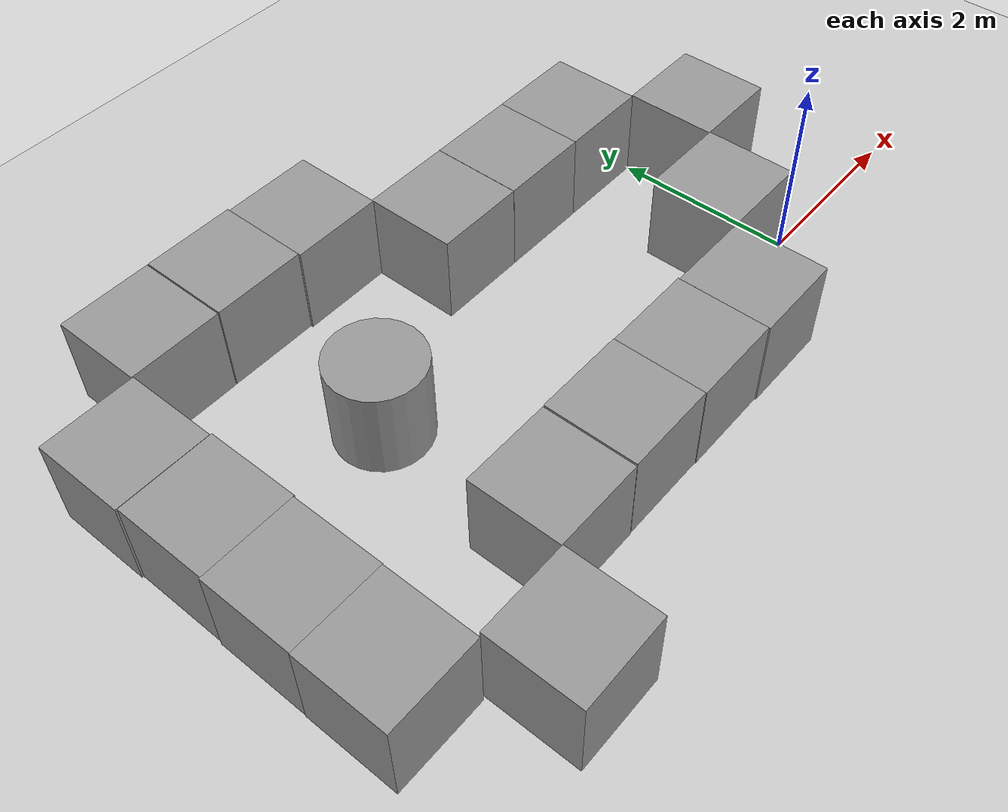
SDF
<sdf version="1.5">
 <world name="default">
  <light name="sun" type="directional">
   <pose>0 0 10 0 -0 0</pose>
   <diffuse>0.8 0.8 0.8 1</diffuse>
   <specular>0.2 0.2 0.2 1</specular>
   <attenuation>
    <range>1000</range>
    <constant>0.9</constant>
    <linear>0.01</linear>
    <quadratic>0.001</quadratic>
   </attenuation>
   <direction>-0.5 0.1 -0.9</direction>
  </light>
  <model name="ground_plane">
   <static>1</static>
   <link name="link">
    <collision name="collision">
     <geometry><plane><normal>0 0 1</normal><size>100 100</size></plane></geometry>
     <surface><friction><ode><mu>100</mu><mu2>50</mu2></ode></friction></surface>
    </collision>
    <visual name="visual">
     <cast_shadows>0</cast_shadows>
     <geometry><plane><normal>0 0 1</normal><size>100 100</size></plane></geometry>
     <material>
      <script><uri>file://media/materials/scripts/gazebo.material</uri><name>Gazebo/Grey</name></script>
     </material>
    </visual>
   </link>
  </model>
  <physics name="default_physics" default="0" type="ode">
   <max_step_size>0.001</max_step_size>
   <real_time_factor>1</real_time_factor>
   <real_time_update_rate>1000</real_time_update_rate>
   <gravity>0 0 -9.8</gravity>
   <magnetic_field>5.5645e-06 2.28758e-05 -4.23884e-05</magnetic_field>
  </physics>
  <scene><ambient>0.4 0.4 0.4 1</ambient><background>0.7 0.7 0.7 1</background><shadows>1</shadows></scene>
  <spherical_coordinates>
   <surface_model>EARTH_WGS84</surface_model>
   <latitude_deg>0</latitude_deg>
   <longitude_deg>0</longitude_deg>
   <elevation>0</elevation>
   <heading_deg>0</heading_deg>
  </spherical_coordinates>
  <model name="unit_box_2_0">
   <pose>-2.5079 2.50705 0.5 0 0 -0.000722</pose>
   <link name="link">
    <inertial>
     <mass>1</mass>
     <inertia><ixx>1</ixx><ixy>0</ixy><ixz>0</ixz><iyy>1</iyy><iyz>0</iyz><izz>1</izz></inertia>
    </inertial>
    <collision name="collision"><geometry><box><size>1 1 1</size></box></geometry></collision>
    <visual name="visual">
     <geometry><box><size>1 1 1</size></box></geometry>
     <material>
      <script><uri>file://media/materials/scripts/gazebo.material</uri><name>Gazebo/Grey</name></script>
     </material>
    </visual>
   </link>
  </model>
  <model name="unit_box_3">
   <pose>-1.50632 2.50734 0.5 0 -0 0</pose>
   <link name="link">
    <inertial>
     <mass>1</mass>
     <inertia><ixx>1</ixx><ixy>0</ixy><ixz>0</ixz><iyy>1</iyy><iyz>0</iyz><izz>1</izz></inertia>
    </inertial>
    <collision name="collision"><geometry><box><size>1 1 1</size></box></geometry></collision>
    <visual name="visual">
     <geometry><box><size>1 1 1</size></box></geometry>
     <material>
      <script><uri>file://media/materials/scripts/gazebo.material</uri><name>Gazebo/Grey</name></script>
     </material>
    </visual>
   </link>
  </model>
  <model name="unit_box_4">
   <pose>-0.506316 2.50863 0.5 0 -0 0</pose>
   <link name="link">
    <inertial>
     <mass>1</mass>
     <inertia><ixx>1</ixx><ixy>0</ixy><ixz>0</ixz><iyy>1</iyy><iyz>0</iyz><izz>1</izz></inertia>
    </inertial>
    <collision name="collision"><geometry><box><size>1 1 1</size></box></geometry></collision>
    <visual name="visual">
     <geometry><box><size>1 1 1</size></box></geometry>
     <material>
      <script><uri>file://media/materials/scripts/gazebo.material</uri><name>Gazebo/Grey</name></script>
     </material>
    </visual>
   </link>
  </model>
  <model name="unit_box_5">
   <pose>0.502659 1.51659 0.5 0 0 -0.001357</pose>
   <link name="link">
    <inertial>
     <mass>1</mass>
     <inertia><ixx>1</ixx><ixy>0</ixy><ixz>0</ixz><iyy>1</iyy><iyz>0</iyz><izz>1</izz></inertia>
    </inertial>
    <collision name="collision"><geometry><box><size>1 1 1</size></box></geometry></collision>
    <visual name="visual">
     <geometry><box><size>1 1 1</size></box></geometry>
     <material>
      <script><uri>file://media/materials/scripts/gazebo.material</uri><name>Gazebo/Grey</name></script>
     </material>
    </visual>
   </link>
  </model>
  <model name="unit_box_6">
   <pose>-0.482542 0.517941 0.5 0 -0 -0.001393</pose>
   <link name="link">
    <inertial>
     <mass>1</mass>
     <inertia><ixx>1</ixx><ixy>0</ixy><ixz>0</ixz><iyy>1</iyy><iyz>0</iyz><izz>1</izz></inertia>
    </inertial>
    <collision name="collision"><geometry><box><size>1 1 1</size></box></geometry></collision>
    <visual name="visual">
     <geometry><box><size>1 1 1</size></box></geometry>
     <material>
      <script><uri>file://media/materials/scripts/gazebo.material</uri><name>Gazebo/Grey</name></script>
     </material>
    </visual>
   </link>
  </model>
  <model name="unit_box_7">
   <pose>-1.473 -0.48356 0.5 -0 -0 -4e-06</pose>
   <link name="link">
    <inertial>
     <mass>1</mass>
     <inertia><ixx>1</ixx><ixy>0</ixy><ixz>0</ixz><iyy>1</iyy><iyz>0</iyz><izz>1</izz></inertia>
    </inertial>
    <collision name="collision"><geometry><box><size>1 1 1</size></box></geometry></collision>
    <visual name="visual">
     <geometry><box><size>1 1 1</size></box></geometry>
     <material>
      <script><uri>file://media/materials/scripts/gazebo.material</uri><name>Gazebo/Grey</name></script>
     </material>
    </visual>
   </link>
  </model>
  <model name="unit_box_8">
   <pose>-2.47301 -0.469701 0.5 0 0 -4e-06</pose>
   <link name="link">
    <inertial>
     <mass>1</mass>
     <inertia><ixx>1</ixx><ixy>0</ixy><ixz>0</ixz><iyy>1</iyy><iyz>0</iyz><izz>1</izz></inertia>
    </inertial>
    <collision name="collision"><geometry><box><size>1 1 1</size></box></geometry></collision>
    <visual name="visual">
     <geometry><box><size>1 1 1</size></box></geometry>
     <material>
      <script><uri>file://media/materials/scripts/gazebo.material</uri><name>Gazebo/Grey</name></script>
     </material>
    </visual>
   </link>
  </model>
  <model name="unit_box_9">
   <pose>-3.47301 -0.462582 0.5 0 -0 -4e-06</pose>
   <link name="link">
    <inertial>
     <mass>1</mass>
     <inertia><ixx>1</ixx><ixy>0</ixy><ixz>0</ixz><iyy>1</iyy><iyz>0</iyz><izz>1</izz></inertia>
    </inertial>
    <collision name="collision"><geometry><box><size>1 1 1</size></box></geometry></collision>
    <visual name="visual">
     <geometry><box><size>1 1 1</size></box></geometry>
     <material>
      <script><uri>file://media/materials/scripts/gazebo.material</uri><name>Gazebo/Grey</name></script>
     </material>
    </visual>
   </link>
  </model>
  <model name="unit_box_10">
   <pose>-4.48869 -0.468806 0.5 0 -0 0</pose>
   <link name="link">
    <inertial>
     <mass>1</mass>
     <inertia><ixx>1</ixx><ixy>0</ixy><ixz>0</ixz><iyy>1</iyy><iyz>0</iyz><izz>1</izz></inertia>
    </inertial>
    <collision name="collision"><geometry><box><size>1 1 1</size></box></geometry></collision>
    <visual name="visual">
     <geometry><box><size>1 1 1</size></box></geometry>
     <material>
      <script><uri>file://media/materials/scripts/gazebo.material</uri><name>Gazebo/Grey</name></script>
     </material>
    </visual>
   </link>
  </model>
  <model name="unit_box_11">
   <pose>-3.50743 3.48742 0.5 0 0 -0.000265</pose>
   <link name="link">
    <inertial>
     <mass>1</mass>
     <inertia><ixx>1</ixx><ixy>0</ixy><ixz>0</ixz><iyy>1</iyy><iyz>0</iyz><izz>1</izz></inertia>
    </inertial>
    <collision name="collision"><geometry><box><size>1 1 1</size></box></geometry></collision>
    <visual name="visual">
     <geometry><box><size>1 1 1</size></box></geometry>
     <material>
      <script><uri>file://media/materials/scripts/gazebo.material</uri><name>Gazebo/Grey</name></script>
     </material>
    </visual>
   </link>
  </model>
  <model name="unit_box_12">
   <pose>-4.50745 3.51209 0.5 -0 -0 -0.000316</pose>
   <link name="link">
    <inertial>
     <mass>1</mass>
     <inertia><ixx>1</ixx><ixy>0</ixy><ixz>0</ixz><iyy>1</iyy><iyz>0</iyz><izz>1</izz></inertia>
    </inertial>
    <collision name="collision"><geometry><box><size>1 1 1</size></box></geometry></collision>
    <visual name="visual">
     <geometry><box><size>1 1 1</size></box></geometry>
     <material>
      <script><uri>file://media/materials/scripts/gazebo.material</uri><name>Gazebo/Grey</name></script>
     </material>
    </visual>
   </link>
  </model>
  <model name="unit_box_13">
   <pose>-5.52004 3.50978 0.5 0 -0 0</pose>
   <link name="link">
    <inertial>
     <mass>1</mass>
     <inertia><ixx>1</ixx><ixy>0</ixy><ixz>0</ixz><iyy>1</iyy><iyz>0</iyz><izz>1</izz></inertia>
    </inertial>
    <collision name="collision"><geometry><box><size>1 1 1</size></box></geometry></collision>
    <visual name="visual">
     <geometry><box><size>1 1 1</size></box></geometry>
     <material>
      <script><uri>file://media/materials/scripts/gazebo.material</uri><name>Gazebo/Grey</name></script>
     </material>
    </visual>
   </link>
  </model>
  <model name="unit_box_14">
   <pose>-6.50341 2.50116 0.5 0 -0 0</pose>
   <link name="link">
    <inertial>
     <mass>1</mass>
     <inertia><ixx>1</ixx><ixy>0</ixy><ixz>0</ixz><iyy>1</iyy><iyz>0</iyz><izz>1</izz></inertia>
    </inertial>
    <collision name="collision"><geometry><box><size>1 1 1</size></box></geometry></collision>
    <visual name="visual">
     <geometry><box><size>1 1 1</size></box></geometry>
     <material>
      <script><uri>file://media/materials/scripts/gazebo.material</uri><name>Gazebo/Grey</name></script>
     </material>
    </visual>
   </link>
  </model>
  <model name="unit_box_15">
   <pose>-6.48613 1.49698 0.5 0 -0 -3.4e-05</pose>
   <link name="link">
    <inertial>
     <mass>1</mass>
     <inertia><ixx>1</ixx><ixy>0</ixy><ixz>0</ixz><iyy>1</iyy><iyz>0</iyz><izz>1</izz></inertia>
    </inertial>
    <collision name="collision"><geometry><box><size>1 1 1</size></box></geometry></collision>
    <visual name="visual">
     <geometry><box><size>1 1 1</size></box></geometry>
     <material>
      <script><uri>file://media/materials/scripts/gazebo.material</uri><name>Gazebo/Grey</name></script>
     </material>
    </visual>
   </link>
  </model>
  <model name="unit_box_16">
   <pose>-6.4999 0.49698 0.5 0 0 -3.3e-05</pose>
   <link name="link">
    <inertial>
     <mass>1</mass>
     <inertia><ixx>1</ixx><ixy>0</ixy><ixz>0</ixz><iyy>1</iyy><iyz>0</iyz><izz>1</izz></inertia>
    </inertial>
    <collision name="collision"><geometry><box><size>1 1 1</size></box></geometry></collision>
    <visual name="visual">
     <geometry><box><size>1 1 1</size></box></geometry>
     <material>
      <script><uri>file://media/materials/scripts/gazebo.material</uri><name>Gazebo/Grey</name></script>
     </material>
    </visual>
   </link>
  </model>
  <model name="unit_box_17">
   <pose>-6.50539 -0.50302 0.5 0 -0 -3.3e-05</pose>
   <link name="link">
    <inertial>
     <mass>1</mass>
     <inertia><ixx>1</ixx><ixy>0</ixy><ixz>0</ixz><iyy>1</iyy><iyz>0</iyz><izz>1</izz></inertia>
    </inertial>
    <collision name="collision"><geometry><box><size>1 1 1</size></box></geometry></collision>
    <visual name="visual">
     <geometry><box><size>1 1 1</size></box></geometry>
     <material>
      <script><uri>file://media/materials/scripts/gazebo.material</uri><name>Gazebo/Grey</name></script>
     </material>
    </visual>
   </link>
  </model>
  <model name="unit_box_18">
   <pose>-5.47622 -1.47066 0.5 0 -0 0</pose>
   <link name="link">
    <inertial>
     <mass>1</mass>
     <inertia><ixx>1</ixx><ixy>0</ixy><ixz>0</ixz><iyy>1</iyy><iyz>0</iyz><izz>1</izz></inertia>
    </inertial>
    <collision name="collision"><geometry><box><size>1 1 1</size></box></geometry></collision>
    <visual name="visual">
     <geometry><box><size>1 1 1</size></box></geometry>
     <material>
      <script><uri>file://media/materials/scripts/gazebo.material</uri><name>Gazebo/Grey</name></script>
     </material>
    </visual>
   </link>
  </model>
  <model name="unit_cylinder_1_0">
   <pose>-4.50748 1.51913 0.499992 0 -0 0</pose>
   <link name="link">
    <inertial>
     <mass>1</mass>
     <inertia><ixx>1</ixx><ixy>0</ixy><ixz>0</ixz><iyy>1</iyy><iyz>0</iyz><izz>1</izz></inertia>
    </inertial>
    <collision name="collision">
     <geometry><cylinder><radius>0.5</radius><length>1</length></cylinder></geometry>
    </collision>
    <visual name="visual">
     <geometry><cylinder><radius>0.5</radius><length>1</length></cylinder></geometry>
     <material>
      <script><uri>file://media/materials/scripts/gazebo.material</uri><name>Gazebo/Grey</name></script>
     </material>
    </visual>
   </link>
  </model>
 </world>
</sdf>
